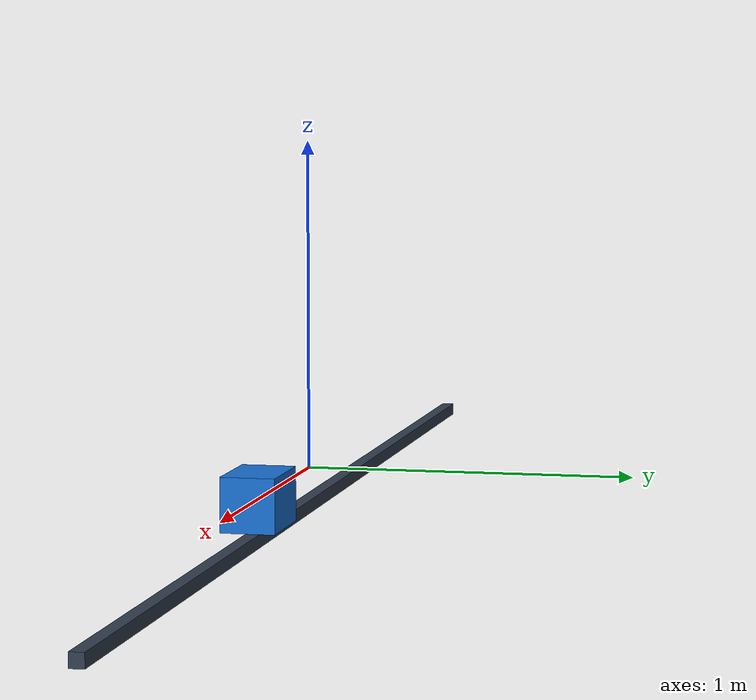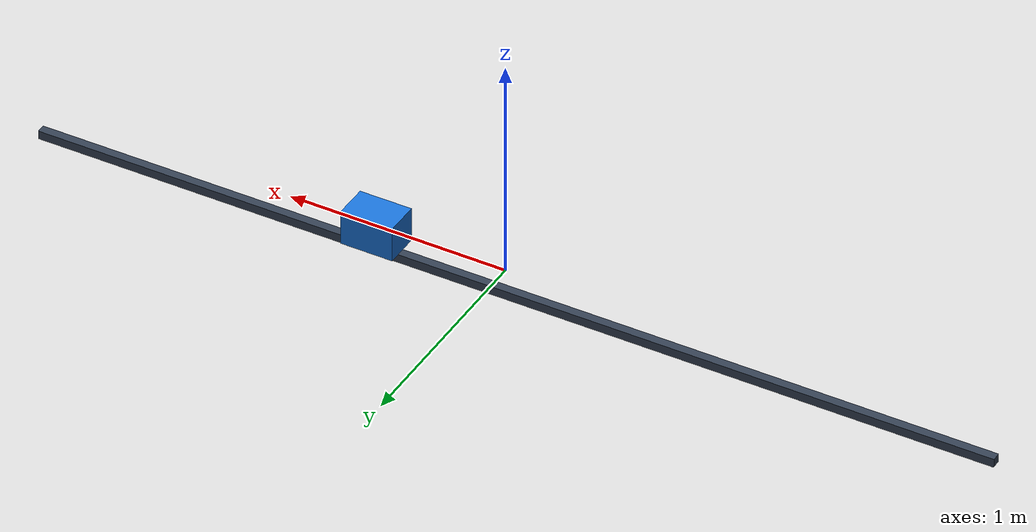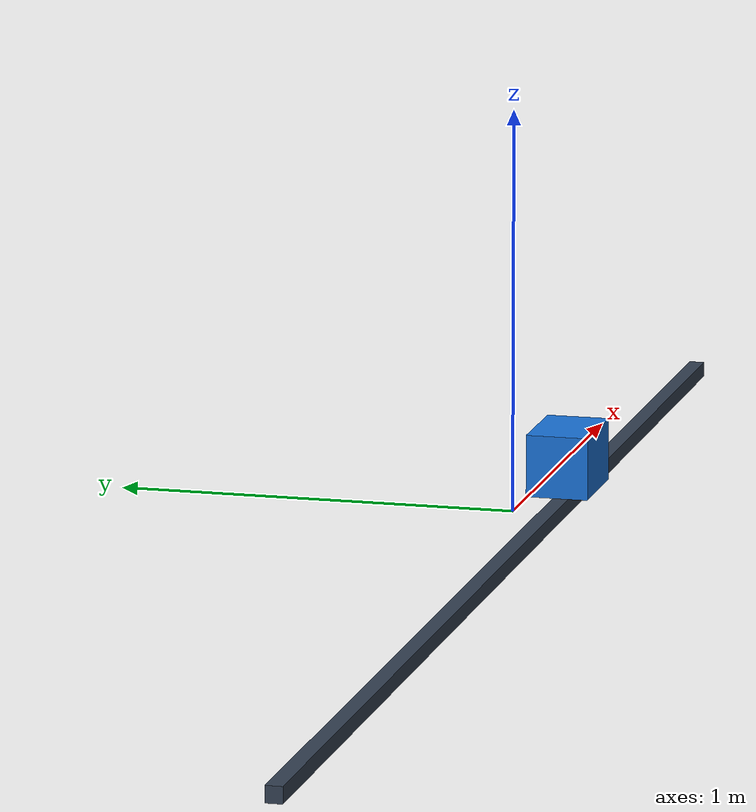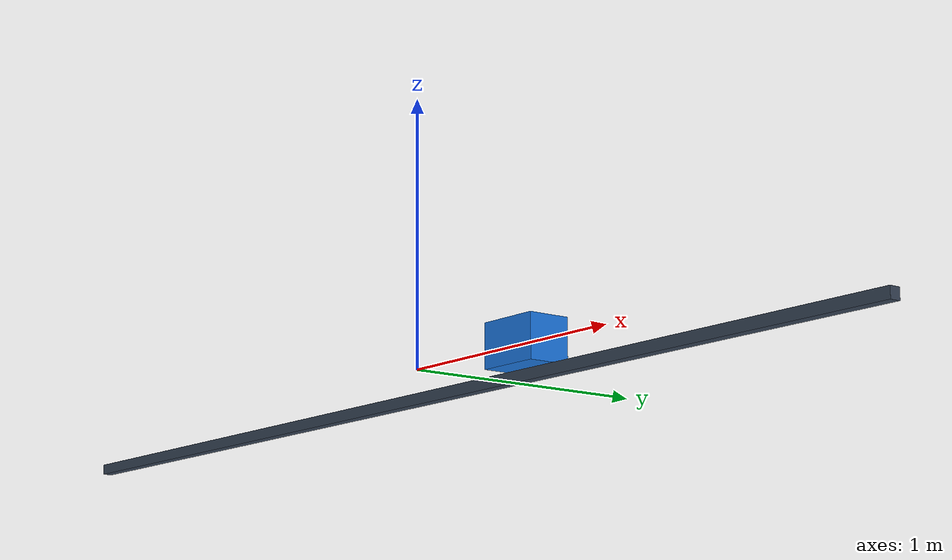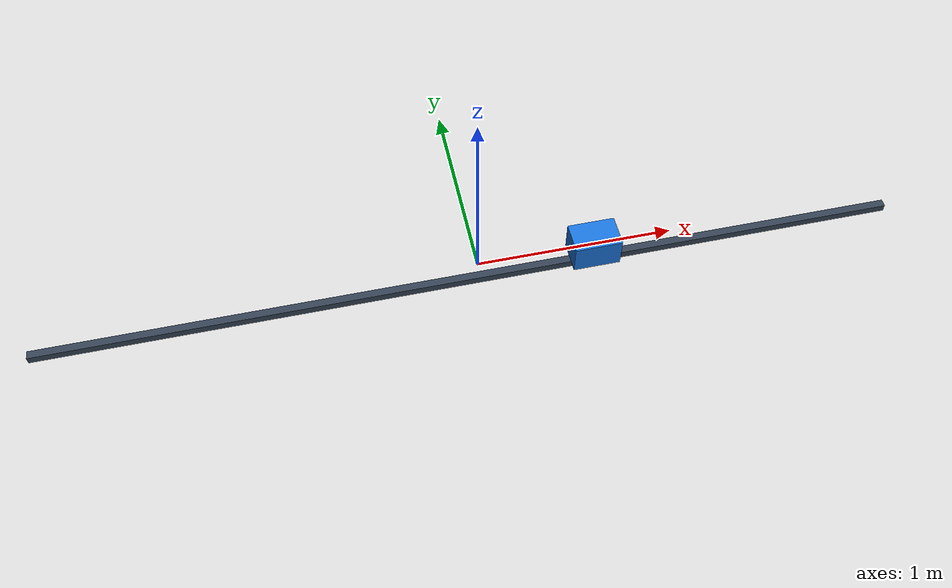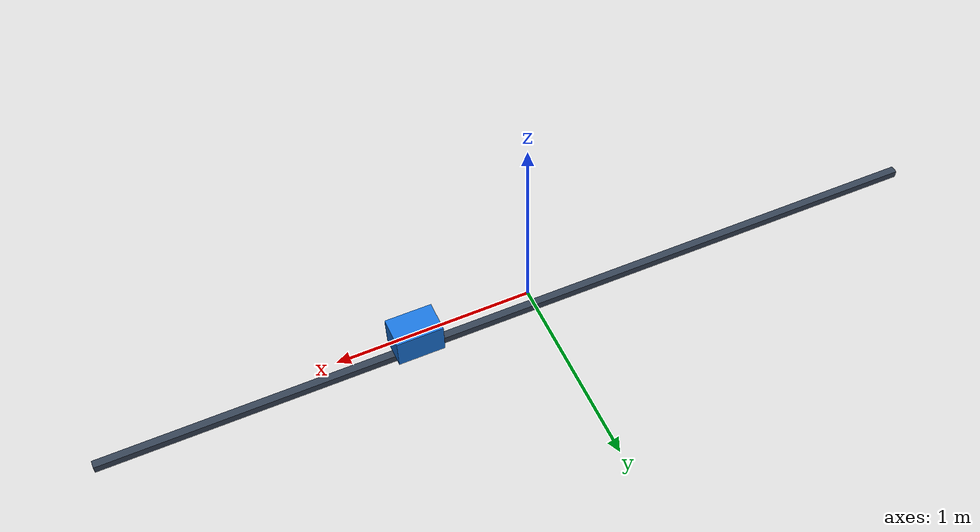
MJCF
<mujoco model="example_mass_spring">
  <compiler angle="radian"/>
  <option gravity="0 0 0" timestep="0.005"/>
  <worldbody>
    <geom name="rail" type="box" size="2.2 0.02 0.02" pos="0 0 -0.11" contype="0" conaffinity="0" rgba="0.2 0.25 0.32 1"/>
    <body name="slider" pos="0.6 0 0">
      <joint name="slide_x" type="slide" axis="1 0 0" stiffness="12" damping="0.8"/>
      <geom name="slider_geom" type="box" size="0.12 0.08 0.08" mass="1.0" rgba="0.1 0.45 0.85 1"/>
      <site name="slider_center" pos="0 0 0" size="0.025" rgba="0.9 0.2 0.2 1"/>
    </body>
  </worldbody>
</mujoco>
